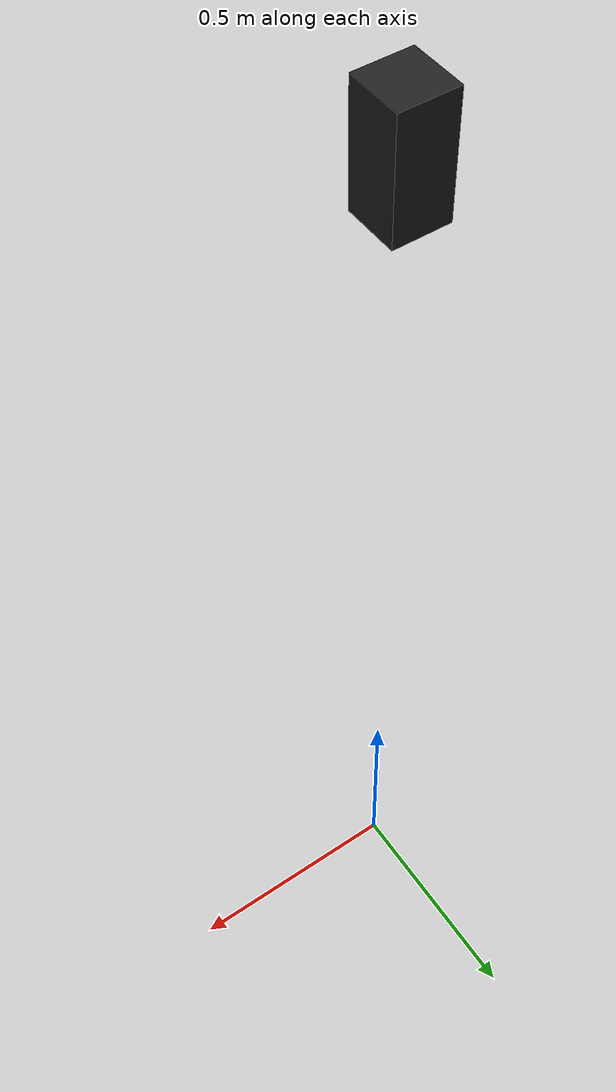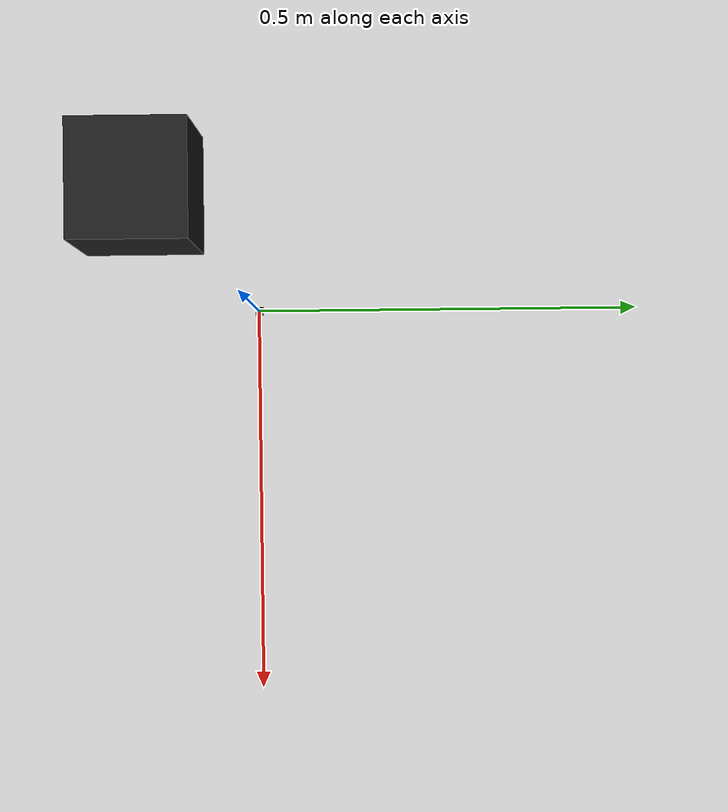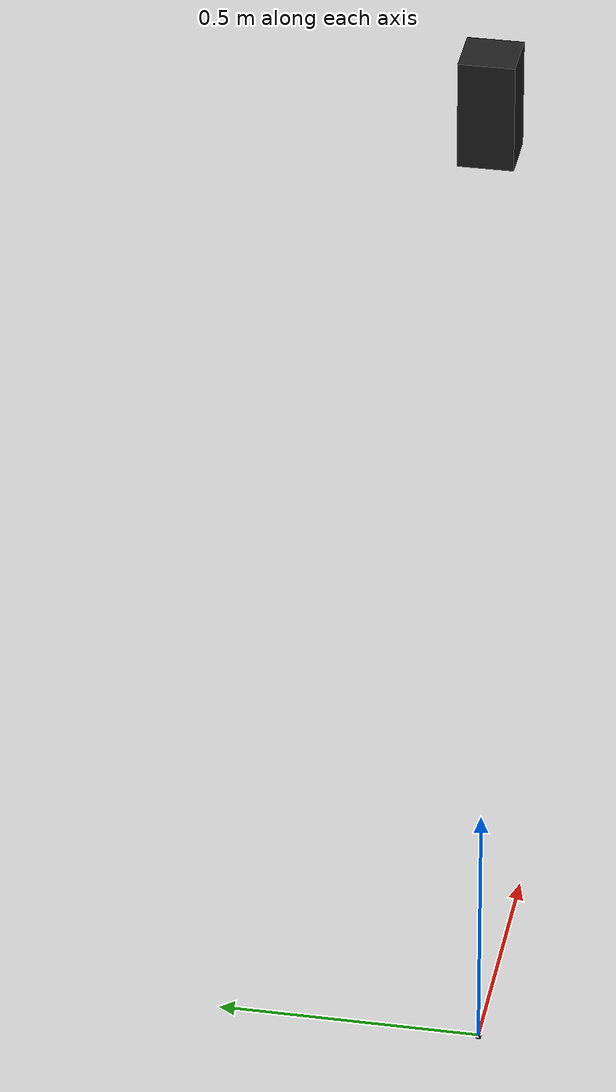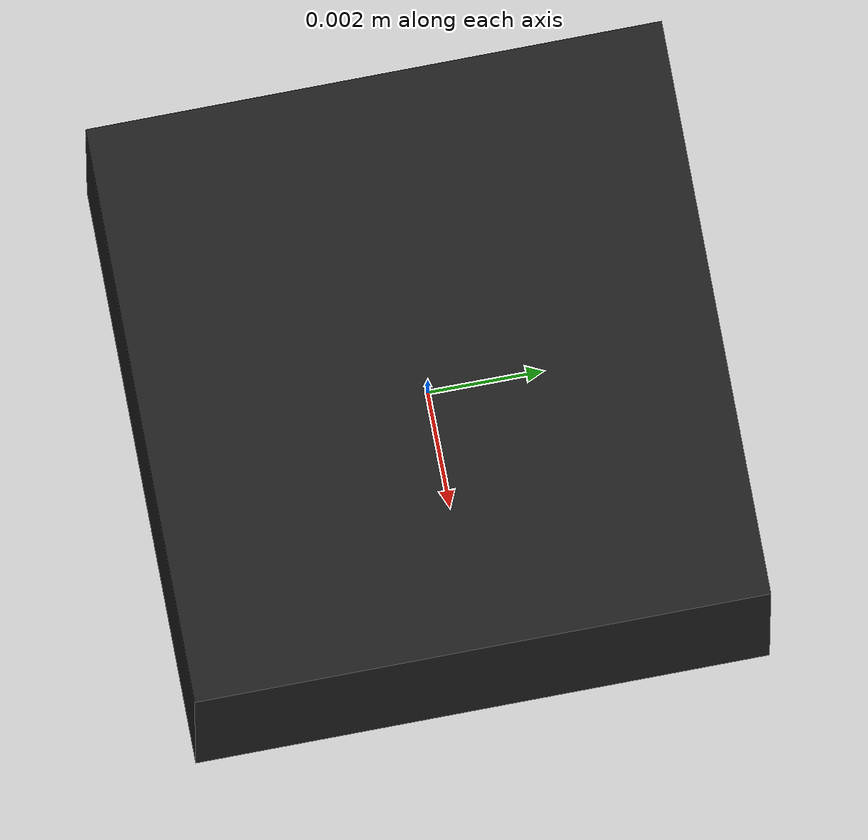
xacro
<?xml version="1.0"?>
<robot xmlns:xacro="http://www.ros.org/wiki/xacro"  name="main_camera">
    <xacro:include filename="inertial_macros.xacro"/>
    <link name="camera_world_link">
            <visual>
            <geometry>
                <box size="0.01 0.01 0.01"/>
            </geometry>
            <material name="black"/>
        </visual>
        <collision>
            <geometry>
                <box size="0.01 0.01 0.01"/>
            </geometry>
        </collision>
        <xacro:inertial_box mass="1000" x="0.01" y="0.01" z="0.01">
            <origin xyz="0 0 0" rpy="0 0 0"/>
        </xacro:inertial_box>
    </link>
    <link name="camera_link">
        <visual>
            <geometry>
                <box size="0.2 0.1 0.1"/>
            </geometry>
            <material name="black"/>
        </visual>
        <collision>
            <geometry>
                <box size="0.2 0.1 0.1"/>
            </geometry>
        </collision>
        <xacro:inertial_box mass="0.0001" x="0.2" y="0.1" z="0.1">
            <origin xyz="0 0 0" rpy="0 0 0"/>
        </xacro:inertial_box>
    </link>

    <gazebo reference="camera_link">
        <material>Gazebo/Black</material>

        <sensor name="main_camera" type="camera">
            <pose> 0 0 0 0 0 0 </pose>
            <visualize>true</visualize>
            <update_rate>10</update_rate>
            <camera>
                <horizontal_fov>1.089</horizontal_fov>
                <image>
                    <format>R8G8B8</format>
                    <width>640</width>
                    <height>480</height>
                </image>
                <clip>
                    <near>0.05</near>
                    <far>8.0</far>
                </clip>
            </camera>
            <plugin name="camera_controller" filename="libgazebo_ros_camera.so">
                <frame_name>camera_link_optical</frame_name>
            </plugin>
        </sensor>
    </gazebo>

    <joint name="camera_joint" type="fixed">
        <parent link="camera_world_link"/>
        <child link="camera_link"/>
        <origin xyz="0 0 2" rpy="0 ${pi/2} 0"/>
    </joint>

    <link name="camera_link_optical"></link>

    <joint name="camera_joint_optical" type="fixed">
        <parent link="camera_link"/>
        <child link="camera_link_optical"/>
        <origin xyz="0 0 0" rpy="${-pi/2} 0 ${-pi/2}"/>
    </joint>
</robot>

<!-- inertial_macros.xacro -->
<robot xmlns:xacro="http://www.ros.org/wiki/xacro" >

    <!-- Specify some standard inertial calculations https://en.wikipedia.org/wiki/List_of_moments_of_inertia -->
    <!-- These make use of xacro's mathematical functionality -->

    <xacro:macro name="inertial_sphere" params="mass radius *origin">
        <inertial>
            <xacro:insert_block name="origin"/>
            <mass value="${mass}" />
            <inertia ixx="${(2/5) * mass * (radius*radius)}" ixy="0.0" ixz="0.0"
                    iyy="${(2/5) * mass * (radius*radius)}" iyz="0.0"
                    izz="${(2/5) * mass * (radius*radius)}" />
        </inertial>
    </xacro:macro>

    <xacro:macro name="inertial_box" params="mass x y z *origin">
        <inertial>
            <xacro:insert_block name="origin"/>
            <mass value="${mass}" />
            <inertia ixx="${(1/12) * mass * (y*y+z*z)}" ixy="0.0" ixz="0.0"
                    iyy="${(1/12) * mass * (x*x+z*z)}" iyz="0.0"
                    izz="${(1/12) * mass * (x*x+y*y)}" />
        </inertial>
    </xacro:macro>

    <xacro:macro name="inertial_cylinder" params="mass length radius *origin">
        <inertial>
            <xacro:insert_block name="origin"/>
            <mass value="${mass}" />
            <inertia ixx="${(1/12) * mass * (3*radius*radius + length*length)}" ixy="0.0" ixz="0.0"
                    iyy="${(1/12) * mass * (3*radius*radius + length*length)}" iyz="0.0"
                    izz="${(1/2) * mass * (radius*radius)}" />
        </inertial>
    </xacro:macro>
</robot>
